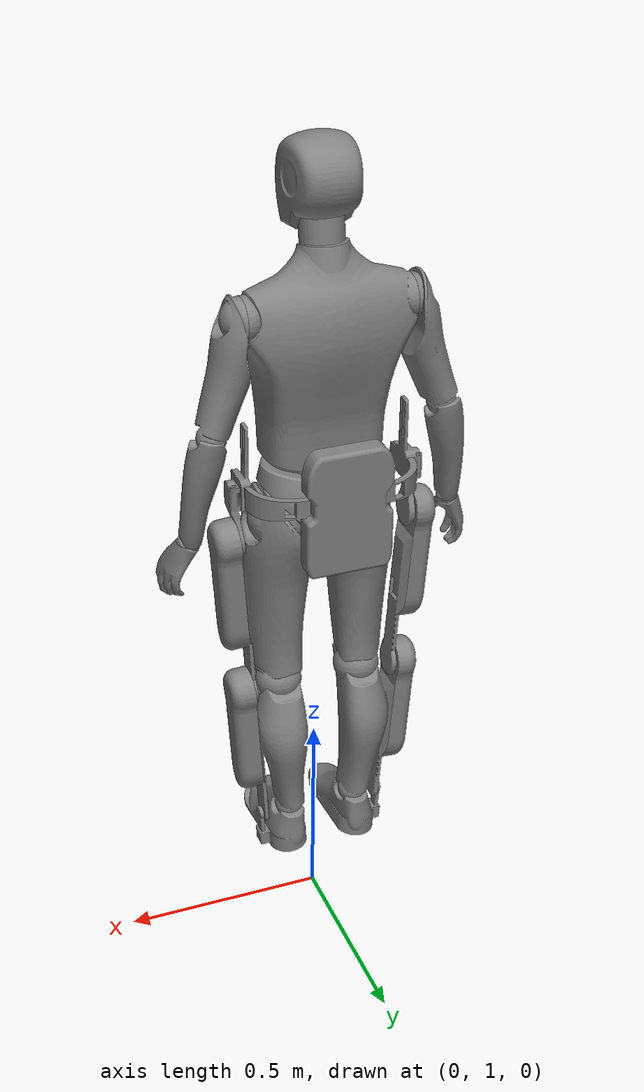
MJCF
<mujoco model="exoskeleton">
  <compiler angle="radian"/>

  <asset>
    <mesh name="EL_ankle" file="./meshes/EL-ankle.stl" scale="0.001 0.001 0.001"/>
    <mesh name="EL_knee" file="./meshes/EL-knee.stl" scale="0.001 0.001 0.001"/>
    <mesh name="EB" file="./meshes/EB.stl" scale="0.001 0.001 0.001"/>
    <mesh name="EL_hip" file="./meshes/EL-hip.stl" scale="0.001 0.001 0.001"/>
    <mesh name="body" file="./meshes/body.stl" scale="0.001 0.001 0.001"/>
    <mesh name="head" file="./meshes/head.stl" scale="0.001 0.001 0.001"/>
    <mesh name="L_forearm" file="./meshes/L-forearm.stl" scale="0.001 0.001 0.001"/>
    <mesh name="L_arm" file="./meshes/L-arm.stl" scale="0.001 0.001 0.001"/>
    <mesh name="L_hand" file="./meshes/L-hand.stl" scale="0.001 0.001 0.001"/>
    <mesh name="R_arm" file="./meshes/R-arm.stl" scale="0.001 0.001 0.001"/>
    <mesh name="R_hand" file="./meshes/R-hand.stl" scale="0.001 0.001 0.001"/>
    <mesh name="ER_hip" file="./meshes/ER-hip.stl" scale="0.001 0.001 0.001"/>
    <mesh name="ER_knee" file="./meshes/ER-knee.stl" scale="0.001 0.001 0.001"/>
    <mesh name="ER_ankle" file="./meshes/ER-ankle.stl" scale="0.001 0.001 0.001"/>
    <mesh name="R_forearm" file="./meshes/R-forearm.stl" scale="0.001 0.001 0.001"/>
  </asset>

  <worldbody>
  <body name="EB" pos="0 1 1.3" quat="1 0 0 0">
    <camera name="depth_cam" pos="0 -0.1 0" zaxis="0 0.707 0.707" fovy="45"/>
    <geom name="EB_collision" pos="1.38955e-10 0 -2" quat="1 0 -3.47384e-11 0" type="mesh" mesh="EB"/>
    <body name="EL_hip" pos="0.218902 0.039 -0.168795" quat="0 0.681998 0 -0.731354">
      <inertial pos="0.158888 0.0247193 0.0597323" quat="0.578287 0.401701 0.573377 0.418878" mass="15.9115" diaginertia="0.365197 0.319066 0.0978994"/>
      <joint name="EL_hip_joint" pos="0 0 0" axis="4.69037e-07 0 1" range="-1.5708 1.5708" actuatorfrcrange="-1000000 1000000"/>
      <geom name="EL_hip_collision" pos="1.99513 -1.26085e-12 -0.138013" quat="0 -0.681998 0 0.731354" type="mesh" mesh="EL_hip"/>
      <body name="EL_knee" pos="0.43 0 0.0025" quat="0 -1 0 0">
        <inertial pos="0.154693 0.0059421 -0.0169216" quat="0.401992 0.573192 0.511101 0.498628" mass="8.82676" diaginertia="0.119293 0.105824 0.0291683"/>
        <joint name="EL_knee_joint" pos="0 0 0" axis="-4.69037e-07 0 1" range="-0.174533 2.0944" actuatorfrcrange="-1000000 1000000"/>
        <geom name="EL_knee_collision" pos="1.99513 -2.28873e-12 0.136513" quat="0.681998 0 -0.731354 0" type="mesh" mesh="EL_knee"/>
        <body name="EL_ankle" pos="0.4 0 -0.0025">
          <inertial pos="0.063803 -0.0531817 -0.0573719" quat="0.665675 0.688908 0.241718 -0.15445" mass="1" diaginertia="0.0167909 0.0160893 0.00490528"/>
          <joint name="EL_ankle_joint" pos="0 0 0" axis="-4.69037e-07 0 1" range="-1.0472 1.5708" actuatorfrcrange="-1000000 1000000"/>
          <geom name="EL_ankle_collision" pos="1.99513 -2.29743e-12 0.136513" quat="0.681998 0 -0.731354 0" type="mesh" mesh="EL_ankle"/>
        </body>
      </body>
    </body>
    <body name="ER_hip" pos="-0.218902 0.039 -0.168795" quat="0.681998 0 -0.731354 0">
      <inertial pos="-0.158888 -0.0247193 -0.0597323" quat="0.578287 0.401701 0.573377 0.418878" mass="15.9115" diaginertia="0.365197 0.319066 0.0978994"/>
      <joint name="ER_hip_joint" pos="0 0 0" axis="4.69037e-07 0 1" range="-1.5708 1.5708" actuatorfrcrange="-1000000 1000000"/>
      <geom name="ER_hip_collision" pos="-1.99513 -7.06823e-12 0.138013" quat="0.681998 0 0.731354 0" type="mesh" mesh="ER_hip"/>
      <body name="ER_knee" pos="-0.43 0 -0.0025" quat="0 1 0 0">
        <inertial pos="-0.154693 -0.0059421 0.0169216" quat="0.401992 0.573192 0.511101 0.498628" mass="8.82676" diaginertia="0.119293 0.105824 0.0291683"/>
        <joint name="ER_knee_joint" pos="0 0 0" axis="-4.69037e-07 0 1" range="-0.174533 2.0944" actuatorfrcrange="-1000000 1000000"/>
        <geom name="ER_knee_collision" pos="-1.99513 -2.00611e-12 -0.136513" quat="0 -0.681998 0 -0.731354" type="mesh" mesh="ER_knee"/>
        <body name="ER_ankle" pos="-0.4 0 0.0025">
          <inertial pos="-0.0638029 0.0531818 0.057372" quat="0.665675 0.688908 0.241718 -0.154449" mass="1" diaginertia="0.016791 0.0160893 0.00490521"/>
          <joint name="ER_ankle_joint" pos="0 0 0" axis="-4.69037e-07 0 1" range="-1.0472 1.5708" actuatorfrcrange="-1000000 1000000"/>
          <geom name="ER_ankle_collision" pos="-1.99513 0 -0.136513" quat="0 -0.681998 0 -0.731354" type="mesh" mesh="ER_ankle"/>
        </body>
      </body>
    </body>
    <body name="body">
      <inertial pos="7.27857e-07 0.0113203 0.247415" quat="0.706569 -0.0275781 0.027586 0.706568" mass="35.2638" diaginertia="1.06739 0.949503 0.371946"/>
      <joint name="torso_joint" pos="0 0 0" axis="0 0 1" range="-1.5708 1.5708" actuatorfrcrange="-1000000 1000000"/>
      <geom name="body_collision" pos="9.60869e-11 0 -1.383" quat="1 0 -3.47386e-11 0" type="mesh" mesh="body"/>
      <body name="R_arm" pos="-0.2 0.0464213 0.385692" quat="0 0.707107 0 0.707107">
        <inertial pos="-0.12833 -0.00625431 -0.0426701" quat="-0.0526397 0.634312 -0.0023652 0.77128" mass="2.2828" diaginertia="0.0185807 0.0176686 0.00286415"/>
        <joint name="RS_joint" pos="0 0 0" axis="0 0 1" range="-3.14159 1.5708" actuatorfrcrange="-1000000 1000000"/>
        <geom name="R_arm_collision" pos="-4.00006 3.37563e-09 0.00473992" quat="0 0.707107 0 0.707107" type="mesh" mesh="R_arm"/>
        <body name="R_forearm" pos="-0.264847 -0.0198197 -0.0796568" quat="0 0.707107 0 0.707107">
          <inertial pos="-0.0268667 -0.0153833 -0.131647" quat="0.976435 -0.0653018 0.0863539 0.186689" mass="1.24814" diaginertia="0.0074798 0.0074271 0.000957918"/>
          <joint name="R_elbow_joint" pos="0 0 0" axis="1 0 0" range="-2.0944 0.174533" actuatorfrcrange="-1000000 1000000"/>
          <geom name="R_forearm_collision" pos="2.11764e-09 4.69913e-09 -4" quat="1 0 -3.47386e-11 0" type="mesh" mesh="R_forearm"/>
          <body name="R_hand" pos="-0.0444275 -0.0400143 -0.281903">
            <inertial pos="-0.0276707 -0.0282138 -0.0630869" quat="0.963141 -0.187289 0.178891 0.072668" mass="0.39981" diaginertia="0.00105872 0.000917332 0.000307705"/>
            <joint name="R_hand_joint" pos="0 0 0" axis="0 0 -1" range="-3.14159 3.14159" actuatorfrcrange="-1000000 1000000"/>
            <geom name="R_hand_collision" pos="0.021435 -0.00142723 -4.00006" quat="1 0 -3.47386e-11 0" type="mesh" mesh="R_hand"/>
          </body>
        </body>
      </body>
      <body name="L_arm" pos="0.2 0.0464213 0.385692" quat="0 -0.707107 0 -0.707107">
        <inertial pos="-0.12833 -0.00625431 0.0426701" quat="0.0023652 0.77128 0.0526397 0.634312" mass="2.2828" diaginertia="0.0185807 0.0176686 0.00286415"/>
        <joint name="LS_joint" pos="0 0 0" axis="0 0 1" range="-3.14159 1.5708" actuatorfrcrange="-1000000 1000000"/>
        <geom name="L_arm_collision" pos="-4.00006 3.37555e-09 -0.00473992" quat="0 0.707107 0 0.707107" type="mesh" mesh="L_arm"/>
        <body name="L_forearm" pos="-0.264847 -0.0198197 0.0796568" quat="0 0.707107 0 0.707107">
          <inertial pos="0.0268667 -0.0153833 -0.131647" quat="0.976435 -0.0653018 -0.0863539 -0.186689" mass="1.24814" diaginertia="0.0074798 0.0074271 0.000957918"/>
          <joint name="L_elbow_joint" pos="0 0 0" axis="1 0 0" range="-2.0944 0.174533" actuatorfrcrange="-1000000 1000000"/>
          <geom name="L_forearm_collision" pos="0.0018782 -0.0292571 -4.01964" quat="1 0 -3.47386e-11 0" type="mesh" mesh="L_forearm"/>
          <body name="L_hand" pos="0.0444275 -0.0400143 -0.281903" quat="0 1 0 0">
            <inertial pos="0.0276707 0.0282138 0.0630869" quat="0.963141 -0.187289 0.178891 0.072668" mass="0.39981" diaginertia="0.00105872 0.000917332 0.000307705"/>
            <joint name="L_hand_joint" pos="0 0 0" axis="0 0 1" range="-3.14159 3.14159" actuatorfrcrange="-1000000 1000000"/>
            <geom name="L_hand_collision" pos="-4.88107e-05 3.07731e-09 4.00006" quat="0 1 0 -3.47386e-11" type="mesh" mesh="L_hand"/>
          </body>
        </body>
      </body>
      <body name="head" pos="0.00012209 -6e-07 0.616999">
        <inertial pos="-0.000140513 -0.0215 0.0454446" quat="0.425264 0.905043 0.00574385 -0.00373813" mass="4.92456" diaginertia="0.0316976 0.0301778 0.0191567"/>
        <joint name="Head_joint" pos="0 0 0" axis="0 0 1" range="-1.5708 1.5708" actuatorfrcrange="-1000000 1000000"/>
        <geom name="head_collision" pos="-0.00012209 3.23451e-09 -4" quat="1 0 -3.47385e-11 0" type="mesh" mesh="head"/>

      </body>
    </body>

  </body>
  </worldbody>
  <contact>
    <!-- 禁用盆骨和大腿之间的碰撞 -->
    <exclude body1="EB" body2="EL_hip" />
    <exclude body1="EB" body2="ER_hip" />
    <!-- 禁用身体和盆骨之间的碰撞 -->
    <exclude body1="EB" body2="body"/>

    <!-- 禁用大腿和小腿之间的碰撞 -->
    <exclude body1="EL_hip" body2="EL_knee" />
    <exclude body1="ER_hip" body2="ER_knee" />

    <!-- 禁用小腿和脚之间的碰撞 -->
    <exclude body1="EL_knee" body2="EL_ankle" />
    <exclude body1="ER_knee" body2="ER_ankle" />

    <!-- 禁用身体和大臂之间的碰撞 -->
    <exclude body1="body" body2="L_arm" />
    <exclude body1="body" body2="R_arm" />

    <!-- 禁用身体和头之间的碰撞 -->
    <exclude body1="body" body2="head"/>

    <!-- 禁用大臂和小臂之间的碰撞 -->
    <exclude body1="L_arm" body2="L_forearm" />
    <exclude body1="R_arm" body2="R_forearm" />

    <!-- 禁用小臂和手之间的碰撞 -->
    <exclude body1="L_forearm" body2="L_hand"/>
    <exclude body1="R_forearm" body2="R_hand"/>
  </contact>
    <actuator>
        <!-- position controllers -->
        <position name='pos_EL_hip_joint' joint="EL_hip_joint" kp='5000' forcelimited="true" forcerange="-250 250"/>
        <position name='pos_EL_knee_joint' joint="EL_knee_joint" kp='2000' forcelimited="true" forcerange="-250 250"/>
        <position name='pos_EL_ankle_joint' joint="EL_ankle_joint" kp='2000' forcelimited="true" forcerange="-250 250"/>
        <position name='pos_ER_hip_joint' joint="ER_hip_joint" kp='5000' forcelimited="true" forcerange="-250 250"/>
        <position name='pos_ER_knee_joint' joint="ER_knee_joint" kp='2000' forcelimited="true" forcerange="-250 250"/>
        <position name='pos_ER_ankle_joint' joint="ER_ankle_joint" kp='2000' forcelimited="true" forcerange="-250 250"/>
        <!-- The position controllers of upper body joint -->
        <position name='pos_torso_joint' joint="torso_joint" kp='2000' forcelimited="true" forcerange="-200 200"/> \
        <position name='pos_RS_joint' joint="RS_joint" kp='2000' forcelimited="true" forcerange="-200 200"/>
        <position name='pos_R_elbow_joint' joint="R_elbow_joint" kp='2000' forcelimited="true" forcerange="-200 200"/>
        <position name='pos_R_hand_joint' joint="R_hand_joint" kp='500' forcelimited="true" forcerange="-200 200"/>
        <position name='pos_LS_joint' joint="LS_joint" kp='2000' forcelimited="true" forcerange="-200 200"/>
        <position name='pos_L_elbow_joint' joint="L_elbow_joint" kp='2000' forcelimited="true" forcerange="-200 200"/>
        <position name='pos_L_hand_joint' joint="L_hand_joint" kp='500' forcelimited="true" forcerange="-200 200"/>
        <position name='pos_Head_joint' joint="Head_joint" kp='2000' forcelimited="true" forcerange="-200 200"/>
        <!--velocity controllers-->
        <velocity name='vel_EL_hip_joint' joint="EL_hip_joint" kv='100' forcelimited="true" forcerange="-250 250"/>
        <velocity name='vel_EL_knee_joint' joint="EL_knee_joint" kv='50'  forcelimited="true" forcerange="-250 250"/>
        <velocity name='vel_EL_ankle_joint' joint="EL_ankle_joint" kv='2'  forcelimited="true" forcerange="-250 250"/>
        <velocity name='vel_ER_hip_joint' joint="ER_hip_joint" kv='100' forcelimited="true" forcerange="-250 250"/>
        <velocity name='vel_ER_knee_joint' joint="ER_knee_joint" kv='50'  forcelimited="true" forcerange="-250 250"/>
        <velocity name='vel_ER_ankle_joint' joint="ER_ankle_joint" kv='2'  forcelimited="true" forcerange="-250 250"/>
        <velocity name='vel_Head_joint' joint="Head_joint" kv='2'  forcelimited="true" forcerange="-250 250"/>
        <!-- The velocity controllers of upper body joint -->
        <velocity name='vel_torso_joint' joint="torso_joint" kv='2' forcelimited="true" forcerange="-200 200"/> \
        <velocity name='vel_RS_joint' joint="RS_joint" kv='2' forcelimited="true" forcerange="-200 200"/>
        <velocity name='vel_R_elbow_joint' joint="R_elbow_joint" kv='2' forcelimited="true" forcerange="-200 200"/>
        <velocity name='vel_LS_joint' joint="LS_joint" kv='2' forcelimited="true" forcerange="-200 200"/>
        <velocity name='vel_L_elbow_joint' joint="L_elbow_joint" kv='2' forcelimited="true" forcerange="-200 200"/>

        <!--torque controllers-->
        <motor name='trq_EL_hip_joint' joint="EL_hip_joint" gear='1' forcelimited="true" forcerange="-500 500"/>
        <motor name='trq_EL_knee_joint' joint="EL_knee_joint" gear='1' forcelimited="true" forcerange="-500 500"/>
        <motor name='trq_EL_ankle_joint' joint="EL_ankle_joint" gear='1' forcelimited="true" forcerange="-500 500"/>
        <motor name='trq_ER_hip_joint' joint="ER_hip_joint" gear='1' forcelimited="true" forcerange="-500 500"/>
        <motor name='trq_ER_knee_joint' joint="ER_knee_joint" gear='1' forcelimited="true" forcerange="-500 500"/>
        <motor name='trq_ER_ankle_joint' joint="ER_ankle_joint" gear='1' forcelimited="true" forcerange="-500 500"/>
        <!-- The torque controllers of Upper body joint -->
    </actuator>

    <sensor>
        <!--joint position sensors-->

        <jointpos  name="pos_EL_hip_joint" joint="EL_hip_joint"/>
        <jointpos  name="pos_EL_knee_joint" joint="EL_knee_joint"/>
        <jointpos  name="pos_EL_ankle_joint" joint="EL_ankle_joint"/>
        <jointpos  name="pos_ER_hip_joint" joint="ER_hip_joint"/>
        <jointpos  name="pos_ER_knee_joint" joint="ER_knee_joint"/>
        <jointpos  name="pos_ER_ankle_joint" joint="ER_ankle_joint"/>
        <!--joint velocity sensors-->

        <jointvel  name="vel_EL_hip_joint" joint="EL_hip_joint"/>
        <jointvel  name="vel_EL_knee_joint" joint="EL_knee_joint"/>
        <jointvel  name="vel_EL_ankle_joint" joint="EL_ankle_joint"/>
        <jointvel  name="vel_ER_hip_joint" joint="ER_hip_joint"/>
        <jointvel  name="vel_ER_knee_joint" joint="ER_knee_joint"/>
        <jointvel  name="vel_ER_ankle_joint" joint="ER_ankle_joint"/>

        <!--actuator torque sensors, note that these sensors are not for joints -->

        <!--actuator torque sensors, note that these sensors are not for joints -->

        <jointactuatorfrc  name="frc_EL_hip_joint" joint="EL_hip_joint"/>
        <jointactuatorfrc  name="frc_EL_knee_joint" joint="EL_knee_joint"/>
        <jointactuatorfrc  name="frc_EL_ankle_joint" joint="EL_ankle_joint"/>
        <jointactuatorfrc  name="frc_ER_hip_joint" joint="ER_hip_joint"/>
        <jointactuatorfrc  name="frc_ER_knee_joint" joint="ER_knee_joint"/>
        <jointactuatorfrc  name="frc_ER_ankle_joint" joint="ER_ankle_joint"/>

    </sensor>

</mujoco>
